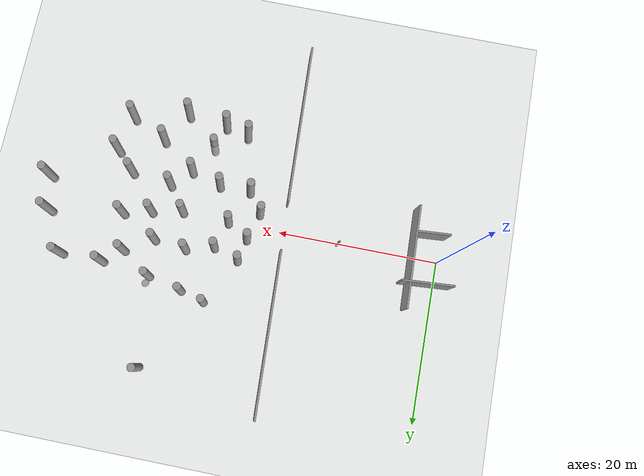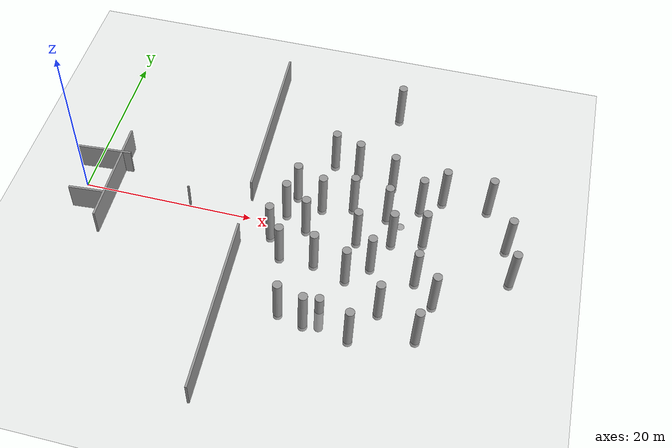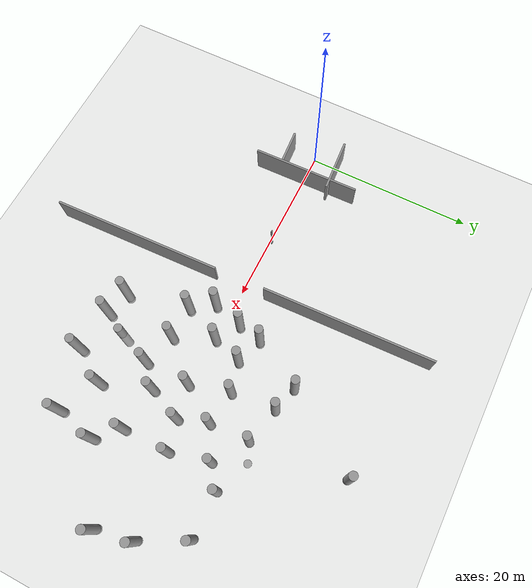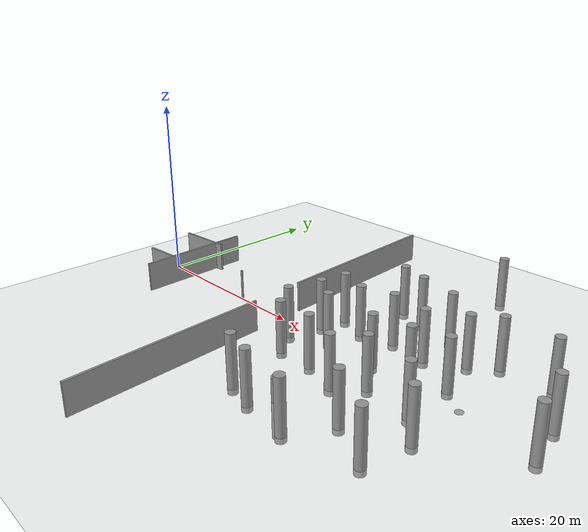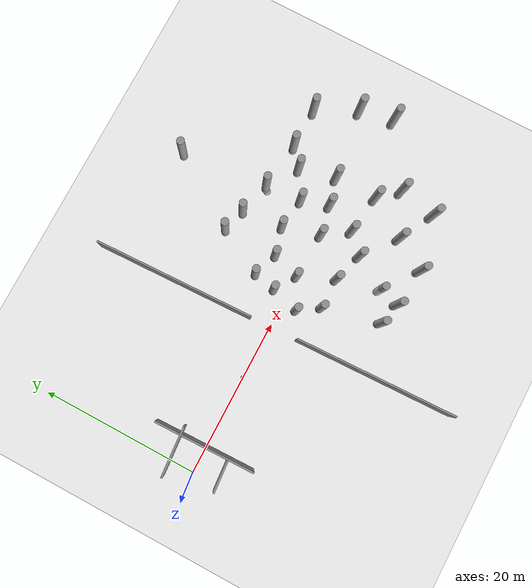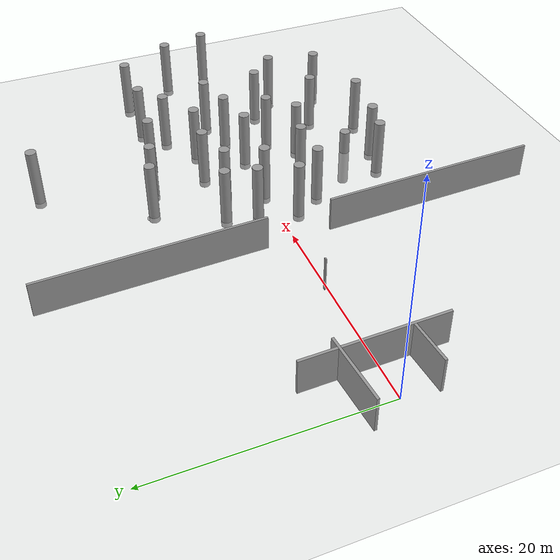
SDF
<sdf version="1.6">
 <world name="default">
  <plugin name="disable_physics" filename="libdisable_physics.so"/>
  <light name="sun" type="directional">
   <cast_shadows>0</cast_shadows>
   <pose>0 0 10 0 -0 0</pose>
   <diffuse>0.8 0.8 0.8 1</diffuse>
   <specular>0.2 0.2 0.2 1</specular>
   <attenuation>
    <range>1000</range>
    <constant>0.9</constant>
    <linear>0.01</linear>
    <quadratic>0.001</quadratic>
   </attenuation>
   <direction>-0.5 0.1 -0.9</direction>
  </light>
  <model name="ground_plane">
   <static>1</static>
   <link name="link">
    <collision name="collision">
     <geometry><plane><normal>0 0 1</normal><size>200 200</size></plane></geometry>
     <surface><friction><ode><mu>100</mu><mu2>50</mu2></ode></friction></surface>
    </collision>
    <visual name="visual">
     <cast_shadows>0</cast_shadows>
     <geometry><plane><normal>0 0 1</normal><size>200 200</size></plane></geometry>
     <material>
      <script><uri>file://media/materials/scripts/gazebo.material</uri><name>Gazebo/Grey</name></script>
     </material>
    </visual>
    <gravity>0</gravity>
   </link>
  </model>
  <physics name="default_physics" default="0" type="ode">
   <max_step_size>0.001</max_step_size>
   <real_time_factor>1</real_time_factor>
   <real_time_update_rate>1000</real_time_update_rate>
  </physics>
  <scene><ambient>0.4 0.4 0.4 1</ambient><background>0.7 0.7 0.7 1</background><shadows>0</shadows></scene>
  <spherical_coordinates>
   <surface_model>EARTH_WGS84</surface_model>
   <latitude_deg>0</latitude_deg>
   <longitude_deg>0</longitude_deg>
   <elevation>0</elevation>
   <heading_deg>0</heading_deg>
  </spherical_coordinates>
  <gravity>0 0 0</gravity>
  <magnetic_field>6e-06 2.3e-05 -4.2e-05</magnetic_field>
  <atmosphere type="adiabatic"/>
  <model name="unit_box_0_0_clone_0">
   <static>1</static>
   <pose>12.6891 0.242726 1.66667 -0.000226 9e-06 0.034068</pose>
   <link name="link">
    <inertial>
     <mass>1</mass>
     <inertia>
      <ixx>0.166667</ixx>
      <ixy>0</ixy>
      <ixz>0</ixz>
      <iyy>0.166667</iyy>
      <iyz>0</iyz>
      <izz>0.166667</izz>
     </inertia>
    </inertial>
    <collision name="collision">
     <geometry><box><size>0.237691 0.126921 3.33454</size></box></geometry>
     <surface><contact><collide_without_contact>1</collide_without_contact></contact></surface>
    </collision>
    <visual name="visual">
     <geometry><box><size>0.237691 0.126921 3.33454</size></box></geometry>
     <material>
      <script><name>Gazebo/Grey</name><uri>file://media/materials/scripts/gazebo.material</uri></script>
     </material>
    </visual>
    <gravity>0</gravity>
   </link>
  </model>
  <model name="unit_cylinder_0">
   <static>1</static>
   <pose>36.5123 8.86063 -7.43476 0 -0 0</pose>
   <link name="link">
    <inertial>
     <mass>1</mass>
     <inertia><ixx>0.145833</ixx><ixy>0</ixy><ixz>0</ixz><iyy>0.145833</iyy><iyz>0</iyz><izz>0.125</izz></inertia>
    </inertial>
    <collision name="collision">
     <geometry><cylinder><radius>0.5</radius><length>0.027471</length></cylinder></geometry>
     <surface><contact><collide_without_contact>1</collide_without_contact></contact></surface>
    </collision>
    <visual name="visual">
     <geometry><cylinder><radius>0.5</radius><length>0.027471</length></cylinder></geometry>
     <material>
      <script><name>Gazebo/Grey</name><uri>file://media/materials/scripts/gazebo.material</uri></script>
     </material>
    </visual>
    <gravity>0</gravity>
   </link>
  </model>
  <model name="unit_cylinder_0_clone_14">
   <static>1</static>
   <pose>30.4731 -9.99792 -0.733565 0 -0 0.001073</pose>
   <link name="link">
    <inertial>
     <mass>1</mass>
     <inertia><ixx>0.145833</ixx><ixy>0</ixy><ixz>0</ixz><iyy>0.145833</iyy><iyz>0</iyz><izz>0.125</izz></inertia>
    </inertial>
    <collision name="collision">
     <geometry><cylinder><radius>0.5</radius><length>6.03342</length></cylinder></geometry>
     <surface><contact><collide_without_contact>1</collide_without_contact></contact></surface>
    </collision>
    <visual name="visual">
     <geometry><cylinder><radius>0.5</radius><length>6.03342</length></cylinder></geometry>
     <material>
      <script><name>Gazebo/Grey</name><uri>file://media/materials/scripts/gazebo.material</uri></script>
     </material>
    </visual>
    <gravity>0</gravity>
   </link>
  </model>
  <model name="unit_box_0_0_clone_0_clone_clone">
   <static>1</static>
   <pose>20.034 -13.669 1.66667 -0.000226 9e-06 0.034061</pose>
   <link name="link">
    <inertial>
     <mass>1</mass>
     <inertia>
      <ixx>0.166667</ixx>
      <ixy>0</ixy>
      <ixz>0</ixz>
      <iyy>0.166667</iyy>
      <iyz>0</iyz>
      <izz>0.166667</izz>
     </inertia>
    </inertial>
    <collision name="collision">
     <geometry><box><size>0.237691 20.4927 3.33454</size></box></geometry>
     <surface><contact><collide_without_contact>1</collide_without_contact></contact></surface>
    </collision>
    <visual name="visual">
     <geometry><box><size>0.237691 20.4927 3.33454</size></box></geometry>
     <material>
      <script><name>Gazebo/Grey</name><uri>file://media/materials/scripts/gazebo.material</uri></script>
     </material>
    </visual>
    <gravity>0</gravity>
   </link>
  </model>
  <model name="unit_box_0_0_clone_0_clone_clone_0_clone_clone">
   <static>1</static>
   <pose>3.56833 0.275438 1.66667 -0.000226 6e-06 0.022264</pose>
   <link name="link">
    <inertial>
     <mass>1</mass>
     <inertia>
      <ixx>0.166667</ixx>
      <ixy>0</ixy>
      <ixz>0</ixz>
      <iyy>0.166667</iyy>
      <iyz>0</iyz>
      <izz>0.166667</izz>
     </inertia>
    </inertial>
    <collision name="collision">
     <geometry><box><size>0.237691 12.8848 3.33454</size></box></geometry>
     <surface><contact><collide_without_contact>1</collide_without_contact></contact></surface>
    </collision>
    <visual name="visual">
     <geometry><box><size>0.237691 12.8848 3.33454</size></box></geometry>
     <material>
      <script><name>Gazebo/Grey</name><uri>file://media/materials/scripts/gazebo.material</uri></script>
     </material>
    </visual>
    <gravity>0</gravity>
   </link>
  </model>
  <model name="unit_cylinder_0_clone_14_clone">
   <static>1</static>
   <pose>34.8945 8.63353 2.40172 0 -0 0.001073</pose>
   <link name="link">
    <inertial>
     <mass>1</mass>
     <inertia><ixx>0.145833</ixx><ixy>0</ixy><ixz>0</ixz><iyy>0.145833</iyy><iyz>0</iyz><izz>0.125</izz></inertia>
    </inertial>
    <collision name="collision">
     <geometry><cylinder><radius>0.5</radius><length>6.03342</length></cylinder></geometry>
     <surface><contact><collide_without_contact>1</collide_without_contact></contact></surface>
    </collision>
    <visual name="visual">
     <geometry><cylinder><radius>0.5</radius><length>6.03342</length></cylinder></geometry>
     <material>
      <script><name>Gazebo/Grey</name><uri>file://media/materials/scripts/gazebo.material</uri></script>
     </material>
    </visual>
    <gravity>0</gravity>
   </link>
  </model>
  <model name="unit_cylinder_0_clone_14_clone_0">
   <static>1</static>
   <pose>39.7254 1.47591 2.40172 0 -0 0.001073</pose>
   <link name="link">
    <inertial>
     <mass>1</mass>
     <inertia><ixx>0.145833</ixx><ixy>0</ixy><ixz>0</ixz><iyy>0.145833</iyy><iyz>0</iyz><izz>0.125</izz></inertia>
    </inertial>
    <collision name="collision">
     <geometry><cylinder><radius>0.5</radius><length>6.03342</length></cylinder></geometry>
     <surface><contact><collide_without_contact>1</collide_without_contact></contact></surface>
    </collision>
    <visual name="visual">
     <geometry><cylinder><radius>0.5</radius><length>6.03342</length></cylinder></geometry>
     <material>
      <script><name>Gazebo/Grey</name><uri>file://media/materials/scripts/gazebo.material</uri></script>
     </material>
    </visual>
    <gravity>0</gravity>
   </link>
  </model>
  <model name="unit_cylinder_0_clone_14_clone_1">
   <static>1</static>
   <pose>34.6294 -3.2579 2.40172 0 -0 0.001073</pose>
   <link name="link">
    <inertial>
     <mass>1</mass>
     <inertia><ixx>0.145833</ixx><ixy>0</ixy><ixz>0</ixz><iyy>0.145833</iyy><iyz>0</iyz><izz>0.125</izz></inertia>
    </inertial>
    <collision name="collision">
     <geometry><cylinder><radius>0.5</radius><length>6.03342</length></cylinder></geometry>
     <surface><contact><collide_without_contact>1</collide_without_contact></contact></surface>
    </collision>
    <visual name="visual">
     <geometry><cylinder><radius>0.5</radius><length>6.03342</length></cylinder></geometry>
     <material>
      <script><name>Gazebo/Grey</name><uri>file://media/materials/scripts/gazebo.material</uri></script>
     </material>
    </visual>
    <gravity>0</gravity>
   </link>
  </model>
  <model name="unit_cylinder_0_clone_14_clone_2">
   <static>1</static>
   <pose>35.1198 4.01966 2.40172 0 -0 0.001073</pose>
   <link name="link">
    <inertial>
     <mass>1</mass>
     <inertia><ixx>0.145833</ixx><ixy>0</ixy><ixz>0</ixz><iyy>0.145833</iyy><iyz>0</iyz><izz>0.125</izz></inertia>
    </inertial>
    <collision name="collision">
     <geometry><cylinder><radius>0.5</radius><length>6.03342</length></cylinder></geometry>
     <surface><contact><collide_without_contact>1</collide_without_contact></contact></surface>
    </collision>
    <visual name="visual">
     <geometry><cylinder><radius>0.5</radius><length>6.03342</length></cylinder></geometry>
     <material>
      <script><name>Gazebo/Grey</name><uri>file://media/materials/scripts/gazebo.material</uri></script>
     </material>
    </visual>
    <gravity>0</gravity>
   </link>
  </model>
  <model name="unit_cylinder_0_clone_14_clone_3">
   <static>1</static>
   <pose>40.9597 7.945 2.40172 0 -0 0.001073</pose>
   <link name="link">
    <inertial>
     <mass>1</mass>
     <inertia><ixx>0.145833</ixx><ixy>0</ixy><ixz>0</ixz><iyy>0.145833</iyy><iyz>0</iyz><izz>0.125</izz></inertia>
    </inertial>
    <collision name="collision">
     <geometry><cylinder><radius>0.5</radius><length>6.03342</length></cylinder></geometry>
     <surface><contact><collide_without_contact>1</collide_without_contact></contact></surface>
    </collision>
    <visual name="visual">
     <geometry><cylinder><radius>0.5</radius><length>6.03342</length></cylinder></geometry>
     <material>
      <script><name>Gazebo/Grey</name><uri>file://media/materials/scripts/gazebo.material</uri></script>
     </material>
    </visual>
    <gravity>0</gravity>
   </link>
  </model>
  <model name="unit_cylinder_0_clone_14_clone_4">
   <static>1</static>
   <pose>48.8594 2.85128 2.40172 0 -0 0.001073</pose>
   <link name="link">
    <inertial>
     <mass>1</mass>
     <inertia><ixx>0.145833</ixx><ixy>0</ixy><ixz>0</ixz><iyy>0.145833</iyy><iyz>0</iyz><izz>0.125</izz></inertia>
    </inertial>
    <collision name="collision">
     <geometry><cylinder><radius>0.5</radius><length>6.03342</length></cylinder></geometry>
     <surface><contact><collide_without_contact>1</collide_without_contact></contact></surface>
    </collision>
    <visual name="visual">
     <geometry><cylinder><radius>0.5</radius><length>6.03342</length></cylinder></geometry>
     <material>
      <script><name>Gazebo/Grey</name><uri>file://media/materials/scripts/gazebo.material</uri></script>
     </material>
    </visual>
    <gravity>0</gravity>
   </link>
  </model>
  <model name="unit_cylinder_0_clone_14_clone_5">
   <static>1</static>
   <pose>42.0529 -6.41265 2.40172 0 -0 0.001073</pose>
   <link name="link">
    <inertial>
     <mass>1</mass>
     <inertia><ixx>0.145833</ixx><ixy>0</ixy><ixz>0</ixz><iyy>0.145833</iyy><iyz>0</iyz><izz>0.125</izz></inertia>
    </inertial>
    <collision name="collision">
     <geometry><cylinder><radius>0.5</radius><length>6.03342</length></cylinder></geometry>
     <surface><contact><collide_without_contact>1</collide_without_contact></contact></surface>
    </collision>
    <visual name="visual">
     <geometry><cylinder><radius>0.5</radius><length>6.03342</length></cylinder></geometry>
     <material>
      <script><name>Gazebo/Grey</name><uri>file://media/materials/scripts/gazebo.material</uri></script>
     </material>
    </visual>
    <gravity>0</gravity>
   </link>
  </model>
  <model name="unit_cylinder_0_clone_14_clone_6">
   <static>1</static>
   <pose>36.6057 -8.82465 2.40172 0 -0 0.001073</pose>
   <link name="link">
    <inertial>
     <mass>1</mass>
     <inertia><ixx>0.145833</ixx><ixy>0</ixy><ixz>0</ixz><iyy>0.145833</iyy><iyz>0</iyz><izz>0.125</izz></inertia>
    </inertial>
    <collision name="collision">
     <geometry><cylinder><radius>0.5</radius><length>6.03342</length></cylinder></geometry>
     <surface><contact><collide_without_contact>1</collide_without_contact></contact></surface>
    </collision>
    <visual name="visual">
     <geometry><cylinder><radius>0.5</radius><length>6.03342</length></cylinder></geometry>
     <material>
      <script><name>Gazebo/Grey</name><uri>file://media/materials/scripts/gazebo.material</uri></script>
     </material>
    </visual>
    <gravity>0</gravity>
   </link>
  </model>
  <model name="unit_cylinder_0_clone_14_clone_7">
   <static>1</static>
   <pose>49.7522 -1.51213 2.40172 0 -0 0.001073</pose>
   <link name="link">
    <inertial>
     <mass>1</mass>
     <inertia><ixx>0.145833</ixx><ixy>0</ixy><ixz>0</ixz><iyy>0.145833</iyy><iyz>0</iyz><izz>0.125</izz></inertia>
    </inertial>
    <collision name="collision">
     <geometry><cylinder><radius>0.5</radius><length>6.03342</length></cylinder></geometry>
     <surface><contact><collide_without_contact>1</collide_without_contact></contact></surface>
    </collision>
    <visual name="visual">
     <geometry><cylinder><radius>0.5</radius><length>6.03342</length></cylinder></geometry>
     <material>
      <script><name>Gazebo/Grey</name><uri>file://media/materials/scripts/gazebo.material</uri></script>
     </material>
    </visual>
    <gravity>0</gravity>
   </link>
  </model>
  <model name="unit_cylinder_0_clone_14_clone_8">
   <static>1</static>
   <pose>46.1829 7.9359 2.40172 0 -0 0.001073</pose>
   <link name="link">
    <inertial>
     <mass>1</mass>
     <inertia><ixx>0.145833</ixx><ixy>0</ixy><ixz>0</ixz><iyy>0.145833</iyy><iyz>0</iyz><izz>0.125</izz></inertia>
    </inertial>
    <collision name="collision">
     <geometry><cylinder><radius>0.5</radius><length>6.03342</length></cylinder></geometry>
     <surface><contact><collide_without_contact>1</collide_without_contact></contact></surface>
    </collision>
    <visual name="visual">
     <geometry><cylinder><radius>0.5</radius><length>6.03342</length></cylinder></geometry>
     <material>
      <script><name>Gazebo/Grey</name><uri>file://media/materials/scripts/gazebo.material</uri></script>
     </material>
    </visual>
    <gravity>0</gravity>
   </link>
  </model>
  <model name="unit_cylinder_0_clone_14_clone_9">
   <static>1</static>
   <pose>30.626 9.6448 2.40172 0 -0 0.001073</pose>
   <link name="link">
    <inertial>
     <mass>1</mass>
     <inertia><ixx>0.145833</ixx><ixy>0</ixy><ixz>0</ixz><iyy>0.145833</iyy><iyz>0</iyz><izz>0.125</izz></inertia>
    </inertial>
    <collision name="collision">
     <geometry><cylinder><radius>0.5</radius><length>6.03342</length></cylinder></geometry>
     <surface><contact><collide_without_contact>1</collide_without_contact></contact></surface>
    </collision>
    <visual name="visual">
     <geometry><cylinder><radius>0.5</radius><length>6.03342</length></cylinder></geometry>
     <material>
      <script><name>Gazebo/Grey</name><uri>file://media/materials/scripts/gazebo.material</uri></script>
     </material>
    </visual>
    <gravity>0</gravity>
   </link>
  </model>
  <model name="unit_cylinder_0_clone_14_clone_10">
   <static>1</static>
   <pose>27.6346 10.4863 2.40172 0 -0 0.001073</pose>
   <link name="link">
    <inertial>
     <mass>1</mass>
     <inertia><ixx>0.145833</ixx><ixy>0</ixy><ixz>0</ixz><iyy>0.145833</iyy><iyz>0</iyz><izz>0.125</izz></inertia>
    </inertial>
    <collision name="collision">
     <geometry><cylinder><radius>0.5</radius><length>6.03342</length></cylinder></geometry>
     <surface><contact><collide_without_contact>1</collide_without_contact></contact></surface>
    </collision>
    <visual name="visual">
     <geometry><cylinder><radius>0.5</radius><length>6.03342</length></cylinder></geometry>
     <material>
      <script><name>Gazebo/Grey</name><uri>file://media/materials/scripts/gazebo.material</uri></script>
     </material>
    </visual>
    <gravity>0</gravity>
   </link>
  </model>
  <model name="unit_cylinder_0_clone_14_clone_11">
   <static>1</static>
   <pose>39.7289 -3.95269 2.40172 0 -0 0.001073</pose>
   <link name="link">
    <inertial>
     <mass>1</mass>
     <inertia><ixx>0.145833</ixx><ixy>0</ixy><ixz>0</ixz><iyy>0.145833</iyy><iyz>0</iyz><izz>0.125</izz></inertia>
    </inertial>
    <collision name="collision">
     <geometry><cylinder><radius>0.5</radius><length>6.03342</length></cylinder></geometry>
     <surface><contact><collide_without_contact>1</collide_without_contact></contact></surface>
    </collision>
    <visual name="visual">
     <geometry><cylinder><radius>0.5</radius><length>6.03342</length></cylinder></geometry>
     <material>
      <script><name>Gazebo/Grey</name><uri>file://media/materials/scripts/gazebo.material</uri></script>
     </material>
    </visual>
    <gravity>0</gravity>
   </link>
  </model>
  <model name="unit_cylinder_0_clone_14_clone_12">
   <static>1</static>
   <pose>34.1973 -12.8246 2.40172 0 -0 0.001073</pose>
   <link name="link">
    <inertial>
     <mass>1</mass>
     <inertia><ixx>0.145833</ixx><ixy>0</ixy><ixz>0</ixz><iyy>0.145833</iyy><iyz>0</iyz><izz>0.125</izz></inertia>
    </inertial>
    <collision name="collision">
     <geometry><cylinder><radius>0.5</radius><length>6.03342</length></cylinder></geometry>
     <surface><contact><collide_without_contact>1</collide_without_contact></contact></surface>
    </collision>
    <visual name="visual">
     <geometry><cylinder><radius>0.5</radius><length>6.03342</length></cylinder></geometry>
     <material>
      <script><name>Gazebo/Grey</name><uri>file://media/materials/scripts/gazebo.material</uri></script>
     </material>
    </visual>
    <gravity>0</gravity>
   </link>
  </model>
  <model name="unit_cylinder_0_clone_14_clone_13">
   <static>1</static>
   <pose>29.184 -12.1897 2.40172 0 -0 0.001073</pose>
   <link name="link">
    <inertial>
     <mass>1</mass>
     <inertia><ixx>0.145833</ixx><ixy>0</ixy><ixz>0</ixz><iyy>0.145833</iyy><iyz>0</iyz><izz>0.125</izz></inertia>
    </inertial>
    <collision name="collision">
     <geometry><cylinder><radius>0.5</radius><length>6.03342</length></cylinder></geometry>
     <surface><contact><collide_without_contact>1</collide_without_contact></contact></surface>
    </collision>
    <visual name="visual">
     <geometry><cylinder><radius>0.5</radius><length>6.03342</length></cylinder></geometry>
     <material>
      <script><name>Gazebo/Grey</name><uri>file://media/materials/scripts/gazebo.material</uri></script>
     </material>
    </visual>
    <gravity>0</gravity>
   </link>
  </model>
  <model name="unit_cylinder_0_clone_14_clone_14">
   <static>1</static>
   <pose>26.2784 -11.4682 2.40172 0 -0 0.001073</pose>
   <link name="link">
    <inertial>
     <mass>1</mass>
     <inertia><ixx>0.145833</ixx><ixy>0</ixy><ixz>0</ixz><iyy>0.145833</iyy><iyz>0</iyz><izz>0.125</izz></inertia>
    </inertial>
    <collision name="collision">
     <geometry><cylinder><radius>0.5</radius><length>6.03342</length></cylinder></geometry>
     <surface><contact><collide_without_contact>1</collide_without_contact></contact></surface>
    </collision>
    <visual name="visual">
     <geometry><cylinder><radius>0.5</radius><length>6.03342</length></cylinder></geometry>
     <material>
      <script><name>Gazebo/Grey</name><uri>file://media/materials/scripts/gazebo.material</uri></script>
     </material>
    </visual>
    <gravity>0</gravity>
   </link>
  </model>
  <model name="unit_cylinder_0_clone_14_clone_15">
   <static>1</static>
   <pose>33.7515 19.7444 2.40172 0 -0 0.001073</pose>
   <link name="link">
    <inertial>
     <mass>1</mass>
     <inertia><ixx>0.145833</ixx><ixy>0</ixy><ixz>0</ixz><iyy>0.145833</iyy><iyz>0</iyz><izz>0.125</izz></inertia>
    </inertial>
    <collision name="collision">
     <geometry><cylinder><radius>0.5</radius><length>6.03342</length></cylinder></geometry>
     <surface><contact><collide_without_contact>1</collide_without_contact></contact></surface>
    </collision>
    <visual name="visual">
     <geometry><cylinder><radius>0.5</radius><length>6.03342</length></cylinder></geometry>
     <material>
      <script><name>Gazebo/Grey</name><uri>file://media/materials/scripts/gazebo.material</uri></script>
     </material>
    </visual>
    <gravity>0</gravity>
   </link>
  </model>
  <model name="unit_cylinder_0_clone_14_clone_16">
   <static>1</static>
   <pose>32.4082 -0.136858 2.40172 0 -0 0.001073</pose>
   <link name="link">
    <inertial>
     <mass>1</mass>
     <inertia><ixx>0.145833</ixx><ixy>0</ixy><ixz>0</ixz><iyy>0.145833</iyy><iyz>0</iyz><izz>0.125</izz></inertia>
    </inertial>
    <collision name="collision">
     <geometry><cylinder><radius>0.5</radius><length>6.03342</length></cylinder></geometry>
     <surface><contact><collide_without_contact>1</collide_without_contact></contact></surface>
    </collision>
    <visual name="visual">
     <geometry><cylinder><radius>0.5</radius><length>6.03342</length></cylinder></geometry>
     <material>
      <script><name>Gazebo/Grey</name><uri>file://media/materials/scripts/gazebo.material</uri></script>
     </material>
    </visual>
    <gravity>0</gravity>
   </link>
  </model>
  <model name="unit_cylinder_0_clone_14_clone_17">
   <static>1</static>
   <pose>41.0492 -11.1268 2.40172 0 -0 0.001073</pose>
   <link name="link">
    <inertial>
     <mass>1</mass>
     <inertia><ixx>0.145833</ixx><ixy>0</ixy><ixz>0</ixz><iyy>0.145833</iyy><iyz>0</iyz><izz>0.125</izz></inertia>
    </inertial>
    <collision name="collision">
     <geometry><cylinder><radius>0.5</radius><length>6.03342</length></cylinder></geometry>
     <surface><contact><collide_without_contact>1</collide_without_contact></contact></surface>
    </collision>
    <visual name="visual">
     <geometry><cylinder><radius>0.5</radius><length>6.03342</length></cylinder></geometry>
     <material>
      <script><name>Gazebo/Grey</name><uri>file://media/materials/scripts/gazebo.material</uri></script>
     </material>
    </visual>
    <gravity>0</gravity>
   </link>
  </model>
  <model name="unit_box_0_0_clone_0_clone_clone_clone">
   <static>1</static>
   <pose>19.0842 12.813 1.66667 -0.000226 9e-06 0.034061</pose>
   <link name="link">
    <inertial>
     <mass>1</mass>
     <inertia>
      <ixx>0.166667</ixx>
      <ixy>0</ixy>
      <ixz>0</ixz>
      <iyy>0.166667</iyy>
      <iyz>0</iyz>
      <izz>0.166667</izz>
     </inertia>
    </inertial>
    <collision name="collision">
     <geometry><box><size>0.237691 20.4927 3.33454</size></box></geometry>
     <surface><contact><collide_without_contact>1</collide_without_contact></contact></surface>
    </collision>
    <visual name="visual">
     <geometry><box><size>0.237691 20.4927 3.33454</size></box></geometry>
     <material>
      <script><name>Gazebo/Grey</name><uri>file://media/materials/scripts/gazebo.material</uri></script>
     </material>
    </visual>
    <gravity>0</gravity>
   </link>
  </model>
  <model name="unit_box_0_0_clone_0_clone_clone_0_clone_clone_clone">
   <static>1</static>
   <pose>1.35618 3.17894 1.66667 1.8e-05 0.000225 1.64588</pose>
   <link name="link">
    <inertial>
     <mass>1</mass>
     <inertia>
      <ixx>0.166667</ixx>
      <ixy>0</ixy>
      <ixz>0</ixz>
      <iyy>0.166667</iyy>
      <iyz>0</iyz>
      <izz>0.166667</izz>
     </inertia>
    </inertial>
    <collision name="collision">
     <geometry><box><size>0.237691 6.40033 3.33454</size></box></geometry>
     <surface><contact><collide_without_contact>1</collide_without_contact></contact></surface>
    </collision>
    <visual name="visual">
     <geometry><box><size>0.237691 6.40033 3.33454</size></box></geometry>
     <material>
      <script><name>Gazebo/Grey</name><uri>file://media/materials/scripts/gazebo.material</uri></script>
     </material>
    </visual>
    <gravity>0</gravity>
   </link>
  </model>
  <model name="unit_box_0_0_clone_0_clone_clone_0_clone_clone_clone_clone">
   <static>1</static>
   <pose>1.56834 -3.00868 1.66667 1.8e-05 0.000225 1.64588</pose>
   <link name="link">
    <inertial>
     <mass>1</mass>
     <inertia>
      <ixx>0.166667</ixx>
      <ixy>0</ixy>
      <ixz>0</ixz>
      <iyy>0.166667</iyy>
      <iyz>0</iyz>
      <izz>0.166667</izz>
     </inertia>
    </inertial>
    <collision name="collision">
     <geometry><box><size>0.237691 4.13417 3.33454</size></box></geometry>
     <surface><contact><collide_without_contact>1</collide_without_contact></contact></surface>
    </collision>
    <visual name="visual">
     <geometry><box><size>0.237691 4.13417 3.33454</size></box></geometry>
     <material>
      <script><name>Gazebo/Grey</name><uri>file://media/materials/scripts/gazebo.material</uri></script>
     </material>
    </visual>
    <gravity>0</gravity>
   </link>
  </model>
  <model name="unit_cylinder_0_clone_14_clone_9_clone">
   <static>1</static>
   <pose>27.6139 3.55096 2.40172 0 -0 0.001073</pose>
   <link name="link">
    <inertial>
     <mass>1</mass>
     <inertia><ixx>0.145833</ixx><ixy>0</ixy><ixz>0</ixz><iyy>0.145833</iyy><iyz>0</iyz><izz>0.125</izz></inertia>
    </inertial>
    <collision name="collision">
     <geometry><cylinder><radius>0.5</radius><length>6.03342</length></cylinder></geometry>
     <surface><contact><collide_without_contact>1</collide_without_contact></contact></surface>
    </collision>
    <visual name="visual">
     <geometry><cylinder><radius>0.5</radius><length>6.03342</length></cylinder></geometry>
     <material>
      <script><name>Gazebo/Grey</name><uri>file://media/materials/scripts/gazebo.material</uri></script>
     </material>
    </visual>
    <gravity>0</gravity>
   </link>
  </model>
  <model name="unit_cylinder_0_clone_14_clone_9_clone_0">
   <static>1</static>
   <pose>28.4771 -4.34225 2.40172 0 -0 0.001073</pose>
   <link name="link">
    <inertial>
     <mass>1</mass>
     <inertia><ixx>0.145833</ixx><ixy>0</ixy><ixz>0</ixz><iyy>0.145833</iyy><iyz>0</iyz><izz>0.125</izz></inertia>
    </inertial>
    <collision name="collision">
     <geometry><cylinder><radius>0.5</radius><length>6.03342</length></cylinder></geometry>
     <surface><contact><collide_without_contact>1</collide_without_contact></contact></surface>
    </collision>
    <visual name="visual">
     <geometry><cylinder><radius>0.5</radius><length>6.03342</length></cylinder></geometry>
     <material>
      <script><name>Gazebo/Grey</name><uri>file://media/materials/scripts/gazebo.material</uri></script>
     </material>
    </visual>
    <gravity>0</gravity>
   </link>
  </model>
  <model name="unit_cylinder_0_clone_14_clone_9_clone_1">
   <static>1</static>
   <pose>24.5651 -4.32645 2.40172 0 -0 0.001073</pose>
   <link name="link">
    <inertial>
     <mass>1</mass>
     <inertia><ixx>0.145833</ixx><ixy>0</ixy><ixz>0</ixz><iyy>0.145833</iyy><iyz>0</iyz><izz>0.125</izz></inertia>
    </inertial>
    <collision name="collision">
     <geometry><cylinder><radius>0.5</radius><length>6.03342</length></cylinder></geometry>
     <surface><contact><collide_without_contact>1</collide_without_contact></contact></surface>
    </collision>
    <visual name="visual">
     <geometry><cylinder><radius>0.5</radius><length>6.03342</length></cylinder></geometry>
     <material>
      <script><name>Gazebo/Grey</name><uri>file://media/materials/scripts/gazebo.material</uri></script>
     </material>
    </visual>
    <gravity>0</gravity>
   </link>
  </model>
  <model name="unit_cylinder_0_clone_14_clone_9_clone_2">
   <static>1</static>
   <pose>24.4719 4.62219 2.40172 0 -0 0.001073</pose>
   <link name="link">
    <inertial>
     <mass>1</mass>
     <inertia><ixx>0.145833</ixx><ixy>0</ixy><ixz>0</ixz><iyy>0.145833</iyy><iyz>0</iyz><izz>0.125</izz></inertia>
    </inertial>
    <collision name="collision">
     <geometry><cylinder><radius>0.5</radius><length>6.03342</length></cylinder></geometry>
     <surface><contact><collide_without_contact>1</collide_without_contact></contact></surface>
    </collision>
    <visual name="visual">
     <geometry><cylinder><radius>0.5</radius><length>6.03342</length></cylinder></geometry>
     <material>
      <script><name>Gazebo/Grey</name><uri>file://media/materials/scripts/gazebo.material</uri></script>
     </material>
    </visual>
    <gravity>0</gravity>
   </link>
  </model>
  <model name="unit_cylinder_0_clone_14_clone_9_clone_3">
   <static>1</static>
   <pose>26.5113 0.096108 2.40172 0 -0 0.001073</pose>
   <link name="link">
    <inertial>
     <mass>1</mass>
     <inertia><ixx>0.145833</ixx><ixy>0</ixy><ixz>0</ixz><iyy>0.145833</iyy><iyz>0</iyz><izz>0.125</izz></inertia>
    </inertial>
    <collision name="collision">
     <geometry><cylinder><radius>0.5</radius><length>6.03342</length></cylinder></geometry>
     <surface><contact><collide_without_contact>1</collide_without_contact></contact></surface>
    </collision>
    <visual name="visual">
     <geometry><cylinder><radius>0.5</radius><length>6.03342</length></cylinder></geometry>
     <material>
      <script><name>Gazebo/Grey</name><uri>file://media/materials/scripts/gazebo.material</uri></script>
     </material>
    </visual>
    <gravity>0</gravity>
   </link>
  </model>
  <model name="unit_cylinder_0_clone_14_clone_9_clone_4">
   <static>1</static>
   <pose>31.106 4.49997 2.40172 0 -0 0.001073</pose>
   <link name="link">
    <inertial>
     <mass>1</mass>
     <inertia><ixx>0.145833</ixx><ixy>0</ixy><ixz>0</ixz><iyy>0.145833</iyy><iyz>0</iyz><izz>0.125</izz></inertia>
    </inertial>
    <collision name="collision">
     <geometry><cylinder><radius>0.5</radius><length>6.03342</length></cylinder></geometry>
     <surface><contact><collide_without_contact>1</collide_without_contact></contact></surface>
    </collision>
    <visual name="visual">
     <geometry><cylinder><radius>0.5</radius><length>6.03342</length></cylinder></geometry>
     <material>
      <script><name>Gazebo/Grey</name><uri>file://media/materials/scripts/gazebo.material</uri></script>
     </material>
    </visual>
    <gravity>0</gravity>
   </link>
  </model>
  <model name="unit_cylinder_0_clone_14_clone_9_clone_5">
   <static>1</static>
   <pose>23.8422 1.77062 2.40172 0 -0 0.001073</pose>
   <link name="link">
    <inertial>
     <mass>1</mass>
     <inertia><ixx>0.145833</ixx><ixy>0</ixy><ixz>0</ixz><iyy>0.145833</iyy><iyz>0</iyz><izz>0.125</izz></inertia>
    </inertial>
    <collision name="collision">
     <geometry><cylinder><radius>0.5</radius><length>6.03342</length></cylinder></geometry>
     <surface><contact><collide_without_contact>1</collide_without_contact></contact></surface>
    </collision>
    <visual name="visual">
     <geometry><cylinder><radius>0.5</radius><length>6.03342</length></cylinder></geometry>
     <material>
      <script><name>Gazebo/Grey</name><uri>file://media/materials/scripts/gazebo.material</uri></script>
     </material>
    </visual>
    <gravity>0</gravity>
   </link>
  </model>
  <model name="unit_cylinder_0_clone_14_clone_9_clone_6">
   <static>1</static>
   <pose>22.8365 -1.77482 2.40172 0 -0 0.001073</pose>
   <link name="link">
    <inertial>
     <mass>1</mass>
     <inertia><ixx>0.145833</ixx><ixy>0</ixy><ixz>0</ixz><iyy>0.145833</iyy><iyz>0</iyz><izz>0.125</izz></inertia>
    </inertial>
    <collision name="collision">
     <geometry><cylinder><radius>0.5</radius><length>6.03342</length></cylinder></geometry>
     <surface><contact><collide_without_contact>1</collide_without_contact></contact></surface>
    </collision>
    <visual name="visual">
     <geometry><cylinder><radius>0.5</radius><length>6.03342</length></cylinder></geometry>
     <material>
      <script><name>Gazebo/Grey</name><uri>file://media/materials/scripts/gazebo.material</uri></script>
     </material>
    </visual>
    <gravity>0</gravity>
   </link>
  </model>
  <model name="unit_cylinder_0_clone_14_clone_9_clone_7">
   <static>1</static>
   <pose>32.2752 -5.48949 2.40172 0 -0 0.001073</pose>
   <link name="link">
    <inertial>
     <mass>1</mass>
     <inertia><ixx>0.145833</ixx><ixy>0</ixy><ixz>0</ixz><iyy>0.145833</iyy><iyz>0</iyz><izz>0.125</izz></inertia>
    </inertial>
    <collision name="collision">
     <geometry><cylinder><radius>0.5</radius><length>6.03342</length></cylinder></geometry>
     <surface><contact><collide_without_contact>1</collide_without_contact></contact></surface>
    </collision>
    <visual name="visual">
     <geometry><cylinder><radius>0.5</radius><length>6.03342</length></cylinder></geometry>
     <material>
      <script><name>Gazebo/Grey</name><uri>file://media/materials/scripts/gazebo.material</uri></script>
     </material>
    </visual>
    <gravity>0</gravity>
   </link>
  </model>
  <model name="unit_cylinder_0_clone_14_clone_9_clone_8">
   <static>1</static>
   <pose>36.2537 0.598528 2.40172 0 -0 0.001073</pose>
   <link name="link">
    <inertial>
     <mass>1</mass>
     <inertia><ixx>0.145833</ixx><ixy>0</ixy><ixz>0</ixz><iyy>0.145833</iyy><iyz>0</iyz><izz>0.125</izz></inertia>
    </inertial>
    <collision name="collision">
     <geometry><cylinder><radius>0.5</radius><length>6.03342</length></cylinder></geometry>
     <surface><contact><collide_without_contact>1</collide_without_contact></contact></surface>
    </collision>
    <visual name="visual">
     <geometry><cylinder><radius>0.5</radius><length>6.03342</length></cylinder></geometry>
     <material>
      <script><name>Gazebo/Grey</name><uri>file://media/materials/scripts/gazebo.material</uri></script>
     </material>
    </visual>
    <gravity>0</gravity>
   </link>
  </model>
  <model name="unit_cylinder_0_clone_14_clone_9_clone_9">
   <static>1</static>
   <pose>38.6147 6.08509 2.40172 0 -0 0.001073</pose>
   <link name="link">
    <inertial>
     <mass>1</mass>
     <inertia><ixx>0.145833</ixx><ixy>0</ixy><ixz>0</ixz><iyy>0.145833</iyy><iyz>0</iyz><izz>0.125</izz></inertia>
    </inertial>
    <collision name="collision">
     <geometry><cylinder><radius>0.5</radius><length>6.03342</length></cylinder></geometry>
     <surface><contact><collide_without_contact>1</collide_without_contact></contact></surface>
    </collision>
    <visual name="visual">
     <geometry><cylinder><radius>0.5</radius><length>6.03342</length></cylinder></geometry>
     <material>
      <script><name>Gazebo/Grey</name><uri>file://media/materials/scripts/gazebo.material</uri></script>
     </material>
    </visual>
    <gravity>0</gravity>
   </link>
  </model>
 </world>
</sdf>
